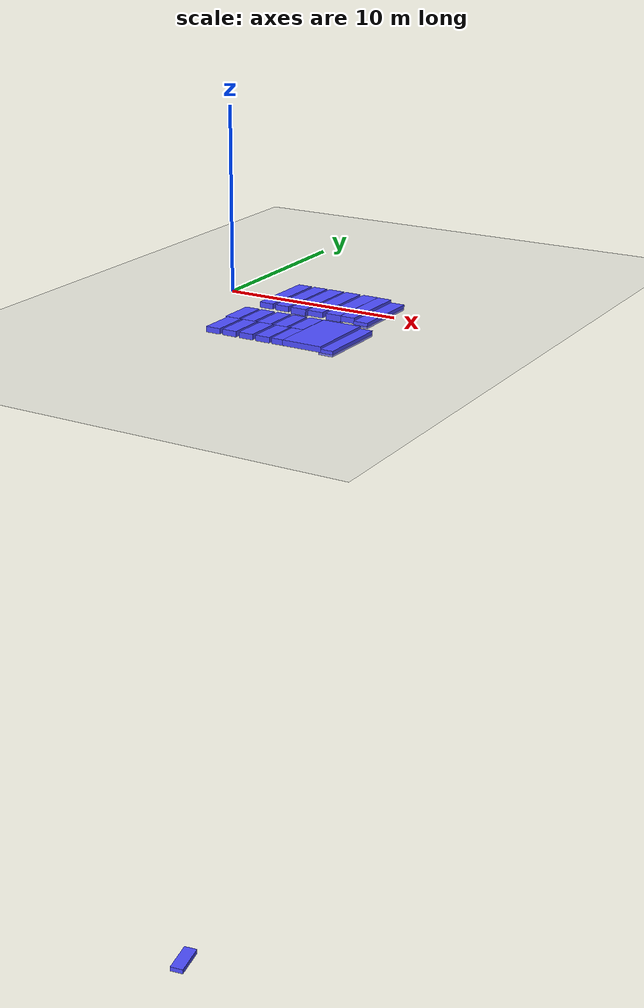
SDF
<sdf version="1.7">
 <world name="default">
  <model name="ground_plane">
   <static>1</static>
   <link name="link">
    <collision name="collision">
     <geometry><plane><normal>0 0 1</normal><size>100 100</size></plane></geometry>
     <surface><friction><ode><mu>100</mu><mu2>50</mu2></ode></friction></surface>
    </collision>
    <visual name="visual">
     <cast_shadows>0</cast_shadows>
     <geometry><plane><normal>0 0 1</normal><size>100 100</size></plane></geometry>
     <material>
      <script><uri>file://media/materials/scripts/gazebo.material</uri><name>Gazebo/Grey</name></script>
     </material>
    </visual>
   </link>
  </model>
  <model name="ban_400_80_30_clone_clone">
   <link name="link">
    <inertial>
     <mass>1</mass>
     <inertia>
      <ixx>0.166667</ixx>
      <ixy>0</ixy>
      <ixz>0</ixz>
      <iyy>0.166667</iyy>
      <iyz>0</iyz>
      <izz>0.166667</izz>
     </inertia>
    </inertial>
    <visual name="visual">
     <geometry><box><size>4 0.8 0.3</size></box></geometry>
     <material>
      <script><name>Gazebo/Grey</name><uri>file://media/materials/scripts/gazebo.material</uri></script>
      <shader type="pixel"><normal_map>__default__</normal_map></shader>
      <ambient>0.3 0.3 1 1</ambient>
      <diffuse>0.7 0.7 0.7 1</diffuse>
      <specular>0.01 0.01 0.01 1</specular>
      <emissive>0 0 0 1</emissive>
     </material>
    </visual>
    <collision name="collision">
     <geometry><box><size>4 0.8 0.3</size></box></geometry>
     <surface>
      <friction>
       <ode><mu>1</mu><mu2>1</mu2><fdir1>0 0 0</fdir1><slip1>0</slip1><slip2>0</slip2></ode>
       <torsional>
        <coefficient>1</coefficient>
        <patch_radius>0</patch_radius>
        <surface_radius>0</surface_radius>
        <use_patch_radius>1</use_patch_radius>
        <ode><slip>0</slip></ode>
       </torsional>
      </friction>
      <bounce><restitution_coefficient>0</restitution_coefficient><threshold>1e+06</threshold></bounce>
      <contact>
       <collide_without_contact>0</collide_without_contact>
       <collide_without_contact_bitmask>1</collide_without_contact_bitmask>
       <collide_bitmask>1</collide_bitmask>
       <ode>
        <soft_cfm>0</soft_cfm>
        <soft_erp>0.2</soft_erp>
        <kp>1e+13</kp>
        <kd>1</kd>
        <max_vel>0.01</max_vel>
        <min_depth>0</min_depth>
       </ode>
       <bullet>
        <split_impulse>1</split_impulse>
        <split_impulse_penetration_threshold>-0.01</split_impulse_penetration_threshold>
        <soft_cfm>0</soft_cfm>
        <soft_erp>0.2</soft_erp>
        <kp>1e+13</kp>
        <kd>1</kd>
       </bullet>
      </contact>
     </surface>
    </collision>
   </link>
   <static>1</static>
   <pose>3.39245 0.063056 0.15556 0 -0 1.55763</pose>
  </model>
  <model name="ban_400_80_30_clone_clone_clone">
   <link name="link">
    <inertial>
     <mass>1</mass>
     <inertia>
      <ixx>0.166667</ixx>
      <ixy>0</ixy>
      <ixz>0</ixz>
      <iyy>0.166667</iyy>
      <iyz>0</iyz>
      <izz>0.166667</izz>
     </inertia>
    </inertial>
    <visual name="visual">
     <geometry><box><size>4 0.8 0.3</size></box></geometry>
     <material>
      <script><name>Gazebo/Grey</name><uri>file://media/materials/scripts/gazebo.material</uri></script>
      <shader type="pixel"><normal_map>__default__</normal_map></shader>
      <ambient>0.3 0.3 1 1</ambient>
      <diffuse>0.7 0.7 0.7 1</diffuse>
      <specular>0.01 0.01 0.01 1</specular>
      <emissive>0 0 0 1</emissive>
     </material>
    </visual>
    <collision name="collision">
     <geometry><box><size>4 0.8 0.3</size></box></geometry>
     <surface>
      <friction>
       <ode><mu>1</mu><mu2>1</mu2><fdir1>0 0 0</fdir1><slip1>0</slip1><slip2>0</slip2></ode>
       <torsional>
        <coefficient>1</coefficient>
        <patch_radius>0</patch_radius>
        <surface_radius>0</surface_radius>
        <use_patch_radius>1</use_patch_radius>
        <ode><slip>0</slip></ode>
       </torsional>
      </friction>
      <bounce><restitution_coefficient>0</restitution_coefficient><threshold>1e+06</threshold></bounce>
      <contact>
       <collide_without_contact>0</collide_without_contact>
       <collide_without_contact_bitmask>1</collide_without_contact_bitmask>
       <collide_bitmask>1</collide_bitmask>
       <ode>
        <soft_cfm>0</soft_cfm>
        <soft_erp>0.2</soft_erp>
        <kp>1e+13</kp>
        <kd>1</kd>
        <max_vel>0.01</max_vel>
        <min_depth>0</min_depth>
       </ode>
       <bullet>
        <split_impulse>1</split_impulse>
        <split_impulse_penetration_threshold>-0.01</split_impulse_penetration_threshold>
        <soft_cfm>0</soft_cfm>
        <soft_erp>0.2</soft_erp>
        <kp>1e+13</kp>
        <kd>1</kd>
       </bullet>
      </contact>
     </surface>
    </collision>
   </link>
   <static>1</static>
   <pose>4.37496 0.053031 0.15556 0 -0 1.55763</pose>
  </model>
  <model name="ban_400_80_30_clone_clone_clone_clone">
   <link name="link">
    <inertial>
     <mass>1</mass>
     <inertia>
      <ixx>0.166667</ixx>
      <ixy>0</ixy>
      <ixz>0</ixz>
      <iyy>0.166667</iyy>
      <iyz>0</iyz>
      <izz>0.166667</izz>
     </inertia>
    </inertial>
    <visual name="visual">
     <geometry><box><size>4 0.884488 0.419826</size></box></geometry>
     <material>
      <script><name>Gazebo/Grey</name><uri>file://media/materials/scripts/gazebo.material</uri></script>
      <shader type="pixel"><normal_map>__default__</normal_map></shader>
      <ambient>0.3 0.3 1 1</ambient>
      <diffuse>0.7 0.7 0.7 1</diffuse>
      <specular>0.01 0.01 0.01 1</specular>
      <emissive>0 0 0 1</emissive>
     </material>
    </visual>
    <collision name="collision">
     <geometry><box><size>4 0.884488 0.419826</size></box></geometry>
     <surface>
      <friction>
       <ode><mu>1</mu><mu2>1</mu2><fdir1>0 0 0</fdir1><slip1>0</slip1><slip2>0</slip2></ode>
       <torsional>
        <coefficient>1</coefficient>
        <patch_radius>0</patch_radius>
        <surface_radius>0</surface_radius>
        <use_patch_radius>1</use_patch_radius>
        <ode><slip>0</slip></ode>
       </torsional>
      </friction>
      <bounce><restitution_coefficient>0</restitution_coefficient><threshold>1e+06</threshold></bounce>
      <contact>
       <collide_without_contact>0</collide_without_contact>
       <collide_without_contact_bitmask>1</collide_without_contact_bitmask>
       <collide_bitmask>1</collide_bitmask>
       <ode>
        <soft_cfm>0</soft_cfm>
        <soft_erp>0.2</soft_erp>
        <kp>1e+13</kp>
        <kd>1</kd>
        <max_vel>0.01</max_vel>
        <min_depth>0</min_depth>
       </ode>
       <bullet>
        <split_impulse>1</split_impulse>
        <split_impulse_penetration_threshold>-0.01</split_impulse_penetration_threshold>
        <soft_cfm>0</soft_cfm>
        <soft_erp>0.2</soft_erp>
        <kp>1e+13</kp>
        <kd>1</kd>
       </bullet>
      </contact>
     </surface>
    </collision>
   </link>
   <static>1</static>
   <pose>5.36986 0.045316 0.097515 0 -0 1.55763</pose>
  </model>
  <model name="ban_400_80_30_clone_clone_clone_clone_0">
   <link name="link">
    <inertial>
     <mass>1</mass>
     <inertia>
      <ixx>0.166667</ixx>
      <ixy>0</ixy>
      <ixz>0</ixz>
      <iyy>0.166667</iyy>
      <iyz>0</iyz>
      <izz>0.166667</izz>
     </inertia>
    </inertial>
    <visual name="visual">
     <geometry><box><size>4 0.893808 0.3</size></box></geometry>
     <material>
      <script><name>Gazebo/Grey</name><uri>file://media/materials/scripts/gazebo.material</uri></script>
      <shader type="pixel"><normal_map>__default__</normal_map></shader>
      <ambient>0.3 0.3 1 1</ambient>
      <diffuse>0.7 0.7 0.7 1</diffuse>
      <specular>0.01 0.01 0.01 1</specular>
      <emissive>0 0 0 1</emissive>
     </material>
    </visual>
    <collision name="collision">
     <geometry><box><size>4 0.893808 0.3</size></box></geometry>
     <surface>
      <friction>
       <ode><mu>1</mu><mu2>1</mu2><fdir1>0 0 0</fdir1><slip1>0</slip1><slip2>0</slip2></ode>
       <torsional>
        <coefficient>1</coefficient>
        <patch_radius>0</patch_radius>
        <surface_radius>0</surface_radius>
        <use_patch_radius>1</use_patch_radius>
        <ode><slip>0</slip></ode>
       </torsional>
      </friction>
      <bounce><restitution_coefficient>0</restitution_coefficient><threshold>1e+06</threshold></bounce>
      <contact>
       <collide_without_contact>0</collide_without_contact>
       <collide_without_contact_bitmask>1</collide_without_contact_bitmask>
       <collide_bitmask>1</collide_bitmask>
       <ode>
        <soft_cfm>0</soft_cfm>
        <soft_erp>0.2</soft_erp>
        <kp>1e+13</kp>
        <kd>1</kd>
        <max_vel>0.01</max_vel>
        <min_depth>0</min_depth>
       </ode>
       <bullet>
        <split_impulse>1</split_impulse>
        <split_impulse_penetration_threshold>-0.01</split_impulse_penetration_threshold>
        <soft_cfm>0</soft_cfm>
        <soft_erp>0.2</soft_erp>
        <kp>1e+13</kp>
        <kd>1</kd>
       </bullet>
      </contact>
     </surface>
    </collision>
   </link>
   <static>1</static>
   <pose>6.39845 0.026417 0.15556 0 -0 1.55763</pose>
  </model>
  <model name="ban_400_80_30_clone_clone_clone_clone_clone">
   <link name="link">
    <inertial>
     <mass>1</mass>
     <inertia>
      <ixx>0.166667</ixx>
      <ixy>0</ixy>
      <ixz>0</ixz>
      <iyy>0.166667</iyy>
      <iyz>0</iyz>
      <izz>0.166667</izz>
     </inertia>
    </inertial>
    <visual name="visual">
     <geometry><box><size>4 0.884489 0.419826</size></box></geometry>
     <material>
      <script><name>Gazebo/Grey</name><uri>file://media/materials/scripts/gazebo.material</uri></script>
      <shader type="pixel"><normal_map>__default__</normal_map></shader>
      <ambient>0.3 0.3 1 1</ambient>
      <diffuse>0.7 0.7 0.7 1</diffuse>
      <specular>0.01 0.01 0.01 1</specular>
      <emissive>0 0 0 1</emissive>
     </material>
    </visual>
    <collision name="collision">
     <geometry><box><size>4 0.884489 0.419826</size></box></geometry>
     <surface>
      <friction>
       <ode><mu>1</mu><mu2>1</mu2><fdir1>0 0 0</fdir1><slip1>0</slip1><slip2>0</slip2></ode>
       <torsional>
        <coefficient>1</coefficient>
        <patch_radius>0</patch_radius>
        <surface_radius>0</surface_radius>
        <use_patch_radius>1</use_patch_radius>
        <ode><slip>0</slip></ode>
       </torsional>
      </friction>
      <bounce><restitution_coefficient>0</restitution_coefficient><threshold>1e+06</threshold></bounce>
      <contact>
       <collide_without_contact>0</collide_without_contact>
       <collide_without_contact_bitmask>1</collide_without_contact_bitmask>
       <collide_bitmask>1</collide_bitmask>
       <ode>
        <soft_cfm>0</soft_cfm>
        <soft_erp>0.2</soft_erp>
        <kp>1e+13</kp>
        <kd>1</kd>
        <max_vel>0.01</max_vel>
        <min_depth>0</min_depth>
       </ode>
       <bullet>
        <split_impulse>1</split_impulse>
        <split_impulse_penetration_threshold>-0.01</split_impulse_penetration_threshold>
        <soft_cfm>0</soft_cfm>
        <soft_erp>0.2</soft_erp>
        <kp>1e+13</kp>
        <kd>1</kd>
       </bullet>
      </contact>
     </surface>
    </collision>
   </link>
   <static>1</static>
   <pose>7.49306 0.005349 0.097515 0 -0 1.55763</pose>
  </model>
  <model name="ban_400_80_30_clone_clone_0">
   <link name="link">
    <inertial>
     <mass>1</mass>
     <inertia>
      <ixx>0.166667</ixx>
      <ixy>0</ixy>
      <ixz>0</ixz>
      <iyy>0.166667</iyy>
      <iyz>0</iyz>
      <izz>0.166667</izz>
     </inertia>
    </inertial>
    <visual name="visual">
     <geometry><box><size>4 0.8 0.3</size></box></geometry>
     <material>
      <script><name>Gazebo/Grey</name><uri>file://media/materials/scripts/gazebo.material</uri></script>
      <shader type="pixel"><normal_map>__default__</normal_map></shader>
      <ambient>0.3 0.3 1 1</ambient>
      <diffuse>0.7 0.7 0.7 1</diffuse>
      <specular>0.01 0.01 0.01 1</specular>
      <emissive>0 0 0 1</emissive>
     </material>
    </visual>
    <collision name="collision">
     <geometry><box><size>4 0.8 0.3</size></box></geometry>
     <surface>
      <friction>
       <ode><mu>1</mu><mu2>1</mu2><fdir1>0 0 0</fdir1><slip1>0</slip1><slip2>0</slip2></ode>
       <torsional>
        <coefficient>1</coefficient>
        <patch_radius>0</patch_radius>
        <surface_radius>0</surface_radius>
        <use_patch_radius>1</use_patch_radius>
        <ode><slip>0</slip></ode>
       </torsional>
      </friction>
      <bounce><restitution_coefficient>0</restitution_coefficient><threshold>1e+06</threshold></bounce>
      <contact>
       <collide_without_contact>0</collide_without_contact>
       <collide_without_contact_bitmask>1</collide_without_contact_bitmask>
       <collide_bitmask>1</collide_bitmask>
       <ode>
        <soft_cfm>0</soft_cfm>
        <soft_erp>0.2</soft_erp>
        <kp>1e+13</kp>
        <kd>1</kd>
        <max_vel>0.01</max_vel>
        <min_depth>0</min_depth>
       </ode>
       <bullet>
        <split_impulse>1</split_impulse>
        <split_impulse_penetration_threshold>-0.01</split_impulse_penetration_threshold>
        <soft_cfm>0</soft_cfm>
        <soft_erp>0.2</soft_erp>
        <kp>1e+13</kp>
        <kd>1</kd>
       </bullet>
      </contact>
     </surface>
    </collision>
   </link>
   <static>1</static>
   <pose>8.33888 -0.001923 0.150704 0 -0 1.55763</pose>
  </model>
  <model name="ban_400_80_30_clone_0">
   <link name="link">
    <inertial>
     <mass>1</mass>
     <inertia>
      <ixx>0.166667</ixx>
      <ixy>0</ixy>
      <ixz>0</ixz>
      <iyy>0.166667</iyy>
      <iyz>0</iyz>
      <izz>0.166667</izz>
     </inertia>
    </inertial>
    <visual name="visual">
     <geometry><box><size>4 0.8 0.3</size></box></geometry>
     <material>
      <script><name>Gazebo/Grey</name><uri>file://media/materials/scripts/gazebo.material</uri></script>
      <shader type="pixel"><normal_map>__default__</normal_map></shader>
      <ambient>0.3 0.3 1 1</ambient>
      <diffuse>0.7 0.7 0.7 1</diffuse>
      <specular>0.01 0.01 0.01 1</specular>
      <emissive>0 0 0 1</emissive>
     </material>
    </visual>
    <collision name="collision">
     <geometry><box><size>4 0.8 0.3</size></box></geometry>
     <surface>
      <friction>
       <ode><mu>1</mu><mu2>1</mu2><fdir1>0 0 0</fdir1><slip1>0</slip1><slip2>0</slip2></ode>
       <torsional>
        <coefficient>1</coefficient>
        <patch_radius>0</patch_radius>
        <surface_radius>0</surface_radius>
        <use_patch_radius>1</use_patch_radius>
        <ode><slip>0</slip></ode>
       </torsional>
      </friction>
      <bounce><restitution_coefficient>0</restitution_coefficient><threshold>1e+06</threshold></bounce>
      <contact>
       <collide_without_contact>0</collide_without_contact>
       <collide_without_contact_bitmask>1</collide_without_contact_bitmask>
       <collide_bitmask>1</collide_bitmask>
       <ode>
        <soft_cfm>0</soft_cfm>
        <soft_erp>0.2</soft_erp>
        <kp>1e+13</kp>
        <kd>1</kd>
        <max_vel>0.01</max_vel>
        <min_depth>0</min_depth>
       </ode>
       <bullet>
        <split_impulse>1</split_impulse>
        <split_impulse_penetration_threshold>-0.01</split_impulse_penetration_threshold>
        <soft_cfm>0</soft_cfm>
        <soft_erp>0.2</soft_erp>
        <kp>1e+13</kp>
        <kd>1</kd>
       </bullet>
      </contact>
     </surface>
    </collision>
   </link>
   <static>1</static>
   <pose>9.1293 -0.014354 0 0 -0 1.55763</pose>
  </model>
  <model name="ban_200_80_30">
   <link name="link">
    <inertial>
     <mass>1</mass>
     <inertia>
      <ixx>0.166667</ixx>
      <ixy>0</ixy>
      <ixz>0</ixz>
      <iyy>0.166667</iyy>
      <iyz>0</iyz>
      <izz>0.166667</izz>
     </inertia>
    </inertial>
    <visual name="visual">
     <geometry><box><size>2 0.8 0.3</size></box></geometry>
     <material>
      <script><name>Gazebo/Grey</name><uri>file://media/materials/scripts/gazebo.material</uri></script>
      <shader type="pixel"><normal_map>__default__</normal_map></shader>
      <ambient>0.3 0.3 1 1</ambient>
      <diffuse>0.7 0.7 0.7 1</diffuse>
      <specular>0.01 0.01 0.01 1</specular>
      <emissive>0 0 0 1</emissive>
     </material>
    </visual>
    <collision name="collision">
     <geometry><box><size>2 0.8 0.3</size></box></geometry>
     <surface>
      <friction>
       <ode><mu>1</mu><mu2>1</mu2><fdir1>0 0 0</fdir1><slip1>0</slip1><slip2>0</slip2></ode>
       <torsional>
        <coefficient>1</coefficient>
        <patch_radius>0</patch_radius>
        <surface_radius>0</surface_radius>
        <use_patch_radius>1</use_patch_radius>
        <ode><slip>0</slip></ode>
       </torsional>
      </friction>
      <bounce><restitution_coefficient>0</restitution_coefficient><threshold>1e+06</threshold></bounce>
      <contact>
       <collide_without_contact>0</collide_without_contact>
       <collide_without_contact_bitmask>1</collide_without_contact_bitmask>
       <collide_bitmask>1</collide_bitmask>
       <ode>
        <soft_cfm>0</soft_cfm>
        <soft_erp>0.2</soft_erp>
        <kp>1e+13</kp>
        <kd>1</kd>
        <max_vel>0.01</max_vel>
        <min_depth>0</min_depth>
       </ode>
       <bullet>
        <split_impulse>1</split_impulse>
        <split_impulse_penetration_threshold>-0.01</split_impulse_penetration_threshold>
        <soft_cfm>0</soft_cfm>
        <soft_erp>0.2</soft_erp>
        <kp>1e+13</kp>
        <kd>1</kd>
       </bullet>
      </contact>
     </surface>
    </collision>
   </link>
   <static>1</static>
   <pose>3.19073 -4.01387 0.12138 0 0 -1.57453</pose>
  </model>
  <model name="ban_200_80_30_clone">
   <link name="link">
    <inertial>
     <mass>1</mass>
     <inertia>
      <ixx>0.166667</ixx>
      <ixy>0</ixy>
      <ixz>0</ixz>
      <iyy>0.166667</iyy>
      <iyz>0</iyz>
      <izz>0.166667</izz>
     </inertia>
    </inertial>
    <visual name="visual">
     <geometry><box><size>2 0.8 0.3</size></box></geometry>
     <material>
      <script><name>Gazebo/Grey</name><uri>file://media/materials/scripts/gazebo.material</uri></script>
      <shader type="pixel"><normal_map>__default__</normal_map></shader>
      <ambient>0.3 0.3 1 1</ambient>
      <diffuse>0.7 0.7 0.7 1</diffuse>
      <specular>0.01 0.01 0.01 1</specular>
      <emissive>0 0 0 1</emissive>
     </material>
    </visual>
    <collision name="collision">
     <geometry><box><size>2 0.8 0.3</size></box></geometry>
     <surface>
      <friction>
       <ode><mu>1</mu><mu2>1</mu2><fdir1>0 0 0</fdir1><slip1>0</slip1><slip2>0</slip2></ode>
       <torsional>
        <coefficient>1</coefficient>
        <patch_radius>0</patch_radius>
        <surface_radius>0</surface_radius>
        <use_patch_radius>1</use_patch_radius>
        <ode><slip>0</slip></ode>
       </torsional>
      </friction>
      <bounce><restitution_coefficient>0</restitution_coefficient><threshold>1e+06</threshold></bounce>
      <contact>
       <collide_without_contact>0</collide_without_contact>
       <collide_without_contact_bitmask>1</collide_without_contact_bitmask>
       <collide_bitmask>1</collide_bitmask>
       <ode>
        <soft_cfm>0</soft_cfm>
        <soft_erp>0.2</soft_erp>
        <kp>1e+13</kp>
        <kd>1</kd>
        <max_vel>0.01</max_vel>
        <min_depth>0</min_depth>
       </ode>
       <bullet>
        <split_impulse>1</split_impulse>
        <split_impulse_penetration_threshold>-0.01</split_impulse_penetration_threshold>
        <soft_cfm>0</soft_cfm>
        <soft_erp>0.2</soft_erp>
        <kp>1e+13</kp>
        <kd>1</kd>
       </bullet>
      </contact>
     </surface>
    </collision>
   </link>
   <static>1</static>
   <pose>3.34228 -6.01948 0.12138 0 0 -1.57453</pose>
  </model>
  <model name="ban_200_80_30_clone_0">
   <link name="link">
    <inertial>
     <mass>1</mass>
     <inertia>
      <ixx>0.166667</ixx>
      <ixy>0</ixy>
      <ixz>0</ixz>
      <iyy>0.166667</iyy>
      <iyz>0</iyz>
      <izz>0.166667</izz>
     </inertia>
    </inertial>
    <visual name="visual">
     <geometry><box><size>2 0.8 0.3</size></box></geometry>
     <material>
      <script><name>Gazebo/Grey</name><uri>file://media/materials/scripts/gazebo.material</uri></script>
      <shader type="pixel"><normal_map>__default__</normal_map></shader>
      <ambient>0.3 0.3 1 1</ambient>
      <diffuse>0.7 0.7 0.7 1</diffuse>
      <specular>0.01 0.01 0.01 1</specular>
      <emissive>0 0 0 1</emissive>
     </material>
    </visual>
    <collision name="collision">
     <geometry><box><size>2 0.8 0.3</size></box></geometry>
     <surface>
      <friction>
       <ode><mu>1</mu><mu2>1</mu2><fdir1>0 0 0</fdir1><slip1>0</slip1><slip2>0</slip2></ode>
       <torsional>
        <coefficient>1</coefficient>
        <patch_radius>0</patch_radius>
        <surface_radius>0</surface_radius>
        <use_patch_radius>1</use_patch_radius>
        <ode><slip>0</slip></ode>
       </torsional>
      </friction>
      <bounce><restitution_coefficient>0</restitution_coefficient><threshold>1e+06</threshold></bounce>
      <contact>
       <collide_without_contact>0</collide_without_contact>
       <collide_without_contact_bitmask>1</collide_without_contact_bitmask>
       <collide_bitmask>1</collide_bitmask>
       <ode>
        <soft_cfm>0</soft_cfm>
        <soft_erp>0.2</soft_erp>
        <kp>1e+13</kp>
        <kd>1</kd>
        <max_vel>0.01</max_vel>
        <min_depth>0</min_depth>
       </ode>
       <bullet>
        <split_impulse>1</split_impulse>
        <split_impulse_penetration_threshold>-0.01</split_impulse_penetration_threshold>
        <soft_cfm>0</soft_cfm>
        <soft_erp>0.2</soft_erp>
        <kp>1e+13</kp>
        <kd>1</kd>
       </bullet>
      </contact>
     </surface>
    </collision>
   </link>
   <static>1</static>
   <pose>4.13438 -4.00905 0.12138 0 0 -1.57453</pose>
  </model>
  <model name="ban_200_80_30_clone_1">
   <link name="link">
    <inertial>
     <mass>1</mass>
     <inertia>
      <ixx>0.166667</ixx>
      <ixy>0</ixy>
      <ixz>0</ixz>
      <iyy>0.166667</iyy>
      <iyz>0</iyz>
      <izz>0.166667</izz>
     </inertia>
    </inertial>
    <visual name="visual">
     <geometry><box><size>2 0.8 0.3</size></box></geometry>
     <material>
      <script><name>Gazebo/Grey</name><uri>file://media/materials/scripts/gazebo.material</uri></script>
      <shader type="pixel"><normal_map>__default__</normal_map></shader>
      <ambient>0.3 0.3 1 1</ambient>
      <diffuse>0.7 0.7 0.7 1</diffuse>
      <specular>0.01 0.01 0.01 1</specular>
      <emissive>0 0 0 1</emissive>
     </material>
    </visual>
    <collision name="collision">
     <geometry><box><size>2 0.8 0.3</size></box></geometry>
     <surface>
      <friction>
       <ode><mu>1</mu><mu2>1</mu2><fdir1>0 0 0</fdir1><slip1>0</slip1><slip2>0</slip2></ode>
       <torsional>
        <coefficient>1</coefficient>
        <patch_radius>0</patch_radius>
        <surface_radius>0</surface_radius>
        <use_patch_radius>1</use_patch_radius>
        <ode><slip>0</slip></ode>
       </torsional>
      </friction>
      <bounce><restitution_coefficient>0</restitution_coefficient><threshold>1e+06</threshold></bounce>
      <contact>
       <collide_without_contact>0</collide_without_contact>
       <collide_without_contact_bitmask>1</collide_without_contact_bitmask>
       <collide_bitmask>1</collide_bitmask>
       <ode>
        <soft_cfm>0</soft_cfm>
        <soft_erp>0.2</soft_erp>
        <kp>1e+13</kp>
        <kd>1</kd>
        <max_vel>0.01</max_vel>
        <min_depth>0</min_depth>
       </ode>
       <bullet>
        <split_impulse>1</split_impulse>
        <split_impulse_penetration_threshold>-0.01</split_impulse_penetration_threshold>
        <soft_cfm>0</soft_cfm>
        <soft_erp>0.2</soft_erp>
        <kp>1e+13</kp>
        <kd>1</kd>
       </bullet>
      </contact>
     </surface>
    </collision>
   </link>
   <static>1</static>
   <pose>4.30573 -6.01081 0.12138 0 0 -1.57453</pose>
  </model>
  <model name="ban_200_80_30_clone_2">
   <link name="link">
    <inertial>
     <mass>1</mass>
     <inertia>
      <ixx>0.166667</ixx>
      <ixy>0</ixy>
      <ixz>0</ixz>
      <iyy>0.166667</iyy>
      <iyz>0</iyz>
      <izz>0.166667</izz>
     </inertia>
    </inertial>
    <visual name="visual">
     <geometry><box><size>2 0.8 0.3</size></box></geometry>
     <material>
      <script><name>Gazebo/Grey</name><uri>file://media/materials/scripts/gazebo.material</uri></script>
      <shader type="pixel"><normal_map>__default__</normal_map></shader>
      <ambient>0.3 0.3 1 1</ambient>
      <diffuse>0.7 0.7 0.7 1</diffuse>
      <specular>0.01 0.01 0.01 1</specular>
      <emissive>0 0 0 1</emissive>
     </material>
    </visual>
    <collision name="collision">
     <geometry><box><size>2 0.8 0.3</size></box></geometry>
     <surface>
      <friction>
       <ode><mu>1</mu><mu2>1</mu2><fdir1>0 0 0</fdir1><slip1>0</slip1><slip2>0</slip2></ode>
       <torsional>
        <coefficient>1</coefficient>
        <patch_radius>0</patch_radius>
        <surface_radius>0</surface_radius>
        <use_patch_radius>1</use_patch_radius>
        <ode><slip>0</slip></ode>
       </torsional>
      </friction>
      <bounce><restitution_coefficient>0</restitution_coefficient><threshold>1e+06</threshold></bounce>
      <contact>
       <collide_without_contact>0</collide_without_contact>
       <collide_without_contact_bitmask>1</collide_without_contact_bitmask>
       <collide_bitmask>1</collide_bitmask>
       <ode>
        <soft_cfm>0</soft_cfm>
        <soft_erp>0.2</soft_erp>
        <kp>1e+13</kp>
        <kd>1</kd>
        <max_vel>0.01</max_vel>
        <min_depth>0</min_depth>
       </ode>
       <bullet>
        <split_impulse>1</split_impulse>
        <split_impulse_penetration_threshold>-0.01</split_impulse_penetration_threshold>
        <soft_cfm>0</soft_cfm>
        <soft_erp>0.2</soft_erp>
        <kp>1e+13</kp>
        <kd>1</kd>
       </bullet>
      </contact>
     </surface>
    </collision>
   </link>
   <static>1</static>
   <pose>5.11893 -4.00066 0.12138 0 0 -1.57453</pose>
  </model>
  <model name="ban_200_80_30_clone_3">
   <link name="link">
    <inertial>
     <mass>1</mass>
     <inertia>
      <ixx>0.166667</ixx>
      <ixy>0</ixy>
      <ixz>0</ixz>
      <iyy>0.166667</iyy>
      <iyz>0</iyz>
      <izz>0.166667</izz>
     </inertia>
    </inertial>
    <visual name="visual">
     <geometry><box><size>2 0.8 0.3</size></box></geometry>
     <material>
      <script><name>Gazebo/Grey</name><uri>file://media/materials/scripts/gazebo.material</uri></script>
      <shader type="pixel"><normal_map>__default__</normal_map></shader>
      <ambient>0.3 0.3 1 1</ambient>
      <diffuse>0.7 0.7 0.7 1</diffuse>
      <specular>0.01 0.01 0.01 1</specular>
      <emissive>0 0 0 1</emissive>
     </material>
    </visual>
    <collision name="collision">
     <geometry><box><size>2 0.8 0.3</size></box></geometry>
     <surface>
      <friction>
       <ode><mu>1</mu><mu2>1</mu2><fdir1>0 0 0</fdir1><slip1>0</slip1><slip2>0</slip2></ode>
       <torsional>
        <coefficient>1</coefficient>
        <patch_radius>0</patch_radius>
        <surface_radius>0</surface_radius>
        <use_patch_radius>1</use_patch_radius>
        <ode><slip>0</slip></ode>
       </torsional>
      </friction>
      <bounce><restitution_coefficient>0</restitution_coefficient><threshold>1e+06</threshold></bounce>
      <contact>
       <collide_without_contact>0</collide_without_contact>
       <collide_without_contact_bitmask>1</collide_without_contact_bitmask>
       <collide_bitmask>1</collide_bitmask>
       <ode>
        <soft_cfm>0</soft_cfm>
        <soft_erp>0.2</soft_erp>
        <kp>1e+13</kp>
        <kd>1</kd>
        <max_vel>0.01</max_vel>
        <min_depth>0</min_depth>
       </ode>
       <bullet>
        <split_impulse>1</split_impulse>
        <split_impulse_penetration_threshold>-0.01</split_impulse_penetration_threshold>
        <soft_cfm>0</soft_cfm>
        <soft_erp>0.2</soft_erp>
        <kp>1e+13</kp>
        <kd>1</kd>
       </bullet>
      </contact>
     </surface>
    </collision>
   </link>
   <static>1</static>
   <pose>5.28348 -6.00227 0.12138 0 0 -1.57453</pose>
  </model>
  <model name="ban_200_80_30_clone_4">
   <link name="link">
    <inertial>
     <mass>1</mass>
     <inertia>
      <ixx>0.166667</ixx>
      <ixy>0</ixy>
      <ixz>0</ixz>
      <iyy>0.166667</iyy>
      <iyz>0</iyz>
      <izz>0.166667</izz>
     </inertia>
    </inertial>
    <visual name="visual">
     <geometry><box><size>2 0.8 0.3</size></box></geometry>
     <material>
      <script><name>Gazebo/Grey</name><uri>file://media/materials/scripts/gazebo.material</uri></script>
      <shader type="pixel"><normal_map>__default__</normal_map></shader>
      <ambient>0.3 0.3 1 1</ambient>
      <diffuse>0.7 0.7 0.7 1</diffuse>
      <specular>0.01 0.01 0.01 1</specular>
      <emissive>0 0 0 1</emissive>
     </material>
    </visual>
    <collision name="collision">
     <geometry><box><size>2 0.8 0.3</size></box></geometry>
     <surface>
      <friction>
       <ode><mu>1</mu><mu2>1</mu2><fdir1>0 0 0</fdir1><slip1>0</slip1><slip2>0</slip2></ode>
       <torsional>
        <coefficient>1</coefficient>
        <patch_radius>0</patch_radius>
        <surface_radius>0</surface_radius>
        <use_patch_radius>1</use_patch_radius>
        <ode><slip>0</slip></ode>
       </torsional>
      </friction>
      <bounce><restitution_coefficient>0</restitution_coefficient><threshold>1e+06</threshold></bounce>
      <contact>
       <collide_without_contact>0</collide_without_contact>
       <collide_without_contact_bitmask>1</collide_without_contact_bitmask>
       <collide_bitmask>1</collide_bitmask>
       <ode>
        <soft_cfm>0</soft_cfm>
        <soft_erp>0.2</soft_erp>
        <kp>1e+13</kp>
        <kd>1</kd>
        <max_vel>0.01</max_vel>
        <min_depth>0</min_depth>
       </ode>
       <bullet>
        <split_impulse>1</split_impulse>
        <split_impulse_penetration_threshold>-0.01</split_impulse_penetration_threshold>
        <soft_cfm>0</soft_cfm>
        <soft_erp>0.2</soft_erp>
        <kp>1e+13</kp>
        <kd>1</kd>
       </bullet>
      </contact>
     </surface>
    </collision>
   </link>
   <static>1</static>
   <pose>6.0825 -4.00246 0.12138 0 0 -1.57453</pose>
  </model>
  <model name="ban_200_80_30_clone_5">
   <link name="link">
    <inertial>
     <mass>1</mass>
     <inertia>
      <ixx>0.166667</ixx>
      <ixy>0</ixy>
      <ixz>0</ixz>
      <iyy>0.166667</iyy>
      <iyz>0</iyz>
      <izz>0.166667</izz>
     </inertia>
    </inertial>
    <visual name="visual">
     <geometry><box><size>2 0.8 0.3</size></box></geometry>
     <material>
      <script><name>Gazebo/Grey</name><uri>file://media/materials/scripts/gazebo.material</uri></script>
      <shader type="pixel"><normal_map>__default__</normal_map></shader>
      <ambient>0.3 0.3 1 1</ambient>
      <diffuse>0.7 0.7 0.7 1</diffuse>
      <specular>0.01 0.01 0.01 1</specular>
      <emissive>0 0 0 1</emissive>
     </material>
    </visual>
    <collision name="collision">
     <geometry><box><size>2 0.8 0.3</size></box></geometry>
     <surface>
      <friction>
       <ode><mu>1</mu><mu2>1</mu2><fdir1>0 0 0</fdir1><slip1>0</slip1><slip2>0</slip2></ode>
       <torsional>
        <coefficient>1</coefficient>
        <patch_radius>0</patch_radius>
        <surface_radius>0</surface_radius>
        <use_patch_radius>1</use_patch_radius>
        <ode><slip>0</slip></ode>
       </torsional>
      </friction>
      <bounce><restitution_coefficient>0</restitution_coefficient><threshold>1e+06</threshold></bounce>
      <contact>
       <collide_without_contact>0</collide_without_contact>
       <collide_without_contact_bitmask>1</collide_without_contact_bitmask>
       <collide_bitmask>1</collide_bitmask>
       <ode>
        <soft_cfm>0</soft_cfm>
        <soft_erp>0.2</soft_erp>
        <kp>1e+13</kp>
        <kd>1</kd>
        <max_vel>0.01</max_vel>
        <min_depth>0</min_depth>
       </ode>
       <bullet>
        <split_impulse>1</split_impulse>
        <split_impulse_penetration_threshold>-0.01</split_impulse_penetration_threshold>
        <soft_cfm>0</soft_cfm>
        <soft_erp>0.2</soft_erp>
        <kp>1e+13</kp>
        <kd>1</kd>
       </bullet>
      </contact>
     </surface>
    </collision>
   </link>
   <static>1</static>
   <pose>6.27593 -6.00952 0.12138 0 0 -1.57453</pose>
  </model>
  <model name="ban_200_80_30_clone_6">
   <link name="link">
    <inertial>
     <mass>1</mass>
     <inertia>
      <ixx>0.166667</ixx>
      <ixy>0</ixy>
      <ixz>0</ixz>
      <iyy>0.166667</iyy>
      <iyz>0</iyz>
      <izz>0.166667</izz>
     </inertia>
    </inertial>
    <visual name="visual">
     <geometry><box><size>2 0.8 0.3</size></box></geometry>
     <material>
      <script><name>Gazebo/Grey</name><uri>file://media/materials/scripts/gazebo.material</uri></script>
      <shader type="pixel"><normal_map>__default__</normal_map></shader>
      <ambient>0.3 0.3 1 1</ambient>
      <diffuse>0.7 0.7 0.7 1</diffuse>
      <specular>0.01 0.01 0.01 1</specular>
      <emissive>0 0 0 1</emissive>
     </material>
    </visual>
    <collision name="collision">
     <geometry><box><size>2 0.8 0.3</size></box></geometry>
     <surface>
      <friction>
       <ode><mu>1</mu><mu2>1</mu2><fdir1>0 0 0</fdir1><slip1>0</slip1><slip2>0</slip2></ode>
       <torsional>
        <coefficient>1</coefficient>
        <patch_radius>0</patch_radius>
        <surface_radius>0</surface_radius>
        <use_patch_radius>1</use_patch_radius>
        <ode><slip>0</slip></ode>
       </torsional>
      </friction>
      <bounce><restitution_coefficient>0</restitution_coefficient><threshold>1e+06</threshold></bounce>
      <contact>
       <collide_without_contact>0</collide_without_contact>
       <collide_without_contact_bitmask>1</collide_without_contact_bitmask>
       <collide_bitmask>1</collide_bitmask>
       <ode>
        <soft_cfm>0</soft_cfm>
        <soft_erp>0.2</soft_erp>
        <kp>1e+13</kp>
        <kd>1</kd>
        <max_vel>0.01</max_vel>
        <min_depth>0</min_depth>
       </ode>
       <bullet>
        <split_impulse>1</split_impulse>
        <split_impulse_penetration_threshold>-0.01</split_impulse_penetration_threshold>
        <soft_cfm>0</soft_cfm>
        <soft_erp>0.2</soft_erp>
        <kp>1e+13</kp>
        <kd>1</kd>
       </bullet>
      </contact>
     </surface>
    </collision>
   </link>
   <static>1</static>
   <pose>7.04749 -3.99179 0.12138 0 0 -1.57453</pose>
  </model>
  <model name="ban_200_80_30_clone_7">
   <link name="link">
    <inertial>
     <mass>1</mass>
     <inertia>
      <ixx>0.166667</ixx>
      <ixy>0</ixy>
      <ixz>0</ixz>
      <iyy>0.166667</iyy>
      <iyz>0</iyz>
      <izz>0.166667</izz>
     </inertia>
    </inertial>
    <visual name="visual">
     <geometry><box><size>2 0.8 0.3</size></box></geometry>
     <material>
      <script><name>Gazebo/Grey</name><uri>file://media/materials/scripts/gazebo.material</uri></script>
      <shader type="pixel"><normal_map>__default__</normal_map></shader>
      <ambient>0.3 0.3 1 1</ambient>
      <diffuse>0.7 0.7 0.7 1</diffuse>
      <specular>0.01 0.01 0.01 1</specular>
      <emissive>0 0 0 1</emissive>
     </material>
    </visual>
    <collision name="collision">
     <geometry><box><size>2 0.8 0.3</size></box></geometry>
     <surface>
      <friction>
       <ode><mu>1</mu><mu2>1</mu2><fdir1>0 0 0</fdir1><slip1>0</slip1><slip2>0</slip2></ode>
       <torsional>
        <coefficient>1</coefficient>
        <patch_radius>0</patch_radius>
        <surface_radius>0</surface_radius>
        <use_patch_radius>1</use_patch_radius>
        <ode><slip>0</slip></ode>
       </torsional>
      </friction>
      <bounce><restitution_coefficient>0</restitution_coefficient><threshold>1e+06</threshold></bounce>
      <contact>
       <collide_without_contact>0</collide_without_contact>
       <collide_without_contact_bitmask>1</collide_without_contact_bitmask>
       <collide_bitmask>1</collide_bitmask>
       <ode>
        <soft_cfm>0</soft_cfm>
        <soft_erp>0.2</soft_erp>
        <kp>1e+13</kp>
        <kd>1</kd>
        <max_vel>0.01</max_vel>
        <min_depth>0</min_depth>
       </ode>
       <bullet>
        <split_impulse>1</split_impulse>
        <split_impulse_penetration_threshold>-0.01</split_impulse_penetration_threshold>
        <soft_cfm>0</soft_cfm>
        <soft_erp>0.2</soft_erp>
        <kp>1e+13</kp>
        <kd>1</kd>
       </bullet>
      </contact>
     </surface>
    </collision>
   </link>
   <static>1</static>
   <pose>7.20156 -5.99933 0.12138 0 0 -1.57453</pose>
  </model>
  <model name="ban_400_80_30_clone_2_clone">
   <link name="link">
    <inertial>
     <mass>1</mass>
     <inertia>
      <ixx>0.166667</ixx>
      <ixy>0</ixy>
      <ixz>0</ixz>
      <iyy>0.166667</iyy>
      <iyz>0</iyz>
      <izz>0.166667</izz>
     </inertia>
    </inertial>
    <visual name="visual">
     <geometry><box><size>4 2.17614 0.3</size></box></geometry>
     <material>
      <script><name>Gazebo/Grey</name><uri>file://media/materials/scripts/gazebo.material</uri></script>
      <shader type="pixel"><normal_map>__default__</normal_map></shader>
      <ambient>0.3 0.3 1 1</ambient>
      <diffuse>0.7 0.7 0.7 1</diffuse>
      <specular>0.01 0.01 0.01 1</specular>
      <emissive>0 0 0 1</emissive>
     </material>
    </visual>
    <collision name="collision">
     <geometry><box><size>4 2.17614 0.3</size></box></geometry>
     <surface>
      <friction>
       <ode><mu>1</mu><mu2>1</mu2><fdir1>0 0 0</fdir1><slip1>0</slip1><slip2>0</slip2></ode>
       <torsional>
        <coefficient>1</coefficient>
        <patch_radius>0</patch_radius>
        <surface_radius>0</surface_radius>
        <use_patch_radius>1</use_patch_radius>
        <ode><slip>0</slip></ode>
       </torsional>
      </friction>
      <bounce><restitution_coefficient>0</restitution_coefficient><threshold>1e+06</threshold></bounce>
      <contact>
       <collide_without_contact>0</collide_without_contact>
       <collide_without_contact_bitmask>1</collide_without_contact_bitmask>
       <collide_bitmask>1</collide_bitmask>
       <ode>
        <soft_cfm>0</soft_cfm>
        <soft_erp>0.2</soft_erp>
        <kp>1e+13</kp>
        <kd>1</kd>
        <max_vel>0.01</max_vel>
        <min_depth>0</min_depth>
       </ode>
       <bullet>
        <split_impulse>1</split_impulse>
        <split_impulse_penetration_threshold>-0.01</split_impulse_penetration_threshold>
        <soft_cfm>0</soft_cfm>
        <soft_erp>0.2</soft_erp>
        <kp>1e+13</kp>
        <kd>1</kd>
       </bullet>
      </contact>
     </surface>
    </collision>
   </link>
   <static>1</static>
   <pose>8.55942 -5.02421 0.12761 0 -0 1.55763</pose>
  </model>
  <model name="ban_400_80_30_clone_1_clone">
   <link name="link">
    <inertial>
     <mass>1</mass>
     <inertia>
      <ixx>0.166667</ixx>
      <ixy>0</ixy>
      <ixz>0</ixz>
      <iyy>0.166667</iyy>
      <iyz>0</iyz>
      <izz>0.166667</izz>
     </inertia>
    </inertial>
    <visual name="visual">
     <geometry><box><size>4 0.8 0.3</size></box></geometry>
     <material>
      <script><name>Gazebo/Grey</name><uri>file://media/materials/scripts/gazebo.material</uri></script>
      <shader type="pixel"><normal_map>__default__</normal_map></shader>
      <ambient>0.3 0.3 1 1</ambient>
      <diffuse>0.7 0.7 0.7 1</diffuse>
      <specular>0.01 0.01 0.01 1</specular>
      <emissive>0 0 0 1</emissive>
     </material>
    </visual>
    <collision name="collision">
     <geometry><box><size>4 0.8 0.3</size></box></geometry>
     <surface>
      <friction>
       <ode><mu>1</mu><mu2>1</mu2><fdir1>0 0 0</fdir1><slip1>0</slip1><slip2>0</slip2></ode>
       <torsional>
        <coefficient>1</coefficient>
        <patch_radius>0</patch_radius>
        <surface_radius>0</surface_radius>
        <use_patch_radius>1</use_patch_radius>
        <ode><slip>0</slip></ode>
       </torsional>
      </friction>
      <bounce><restitution_coefficient>0</restitution_coefficient><threshold>1e+06</threshold></bounce>
      <contact>
       <collide_without_contact>0</collide_without_contact>
       <collide_without_contact_bitmask>1</collide_without_contact_bitmask>
       <collide_bitmask>1</collide_bitmask>
       <ode>
        <soft_cfm>0</soft_cfm>
        <soft_erp>0.2</soft_erp>
        <kp>1e+13</kp>
        <kd>1</kd>
        <max_vel>0.01</max_vel>
        <min_depth>0</min_depth>
       </ode>
       <bullet>
        <split_impulse>1</split_impulse>
        <split_impulse_penetration_threshold>-0.01</split_impulse_penetration_threshold>
        <soft_cfm>0</soft_cfm>
        <soft_erp>0.2</soft_erp>
        <kp>1e+13</kp>
        <kd>1</kd>
       </bullet>
      </contact>
     </surface>
    </collision>
   </link>
   <static>1</static>
   <pose>9.93405 -5.0227 0 0 -0 1.55763</pose>
  </model>
  <model name="ban_200_80_30_clone_clone">
   <link name="link">
    <inertial>
     <mass>1</mass>
     <inertia>
      <ixx>0.166667</ixx>
      <ixy>0</ixy>
      <ixz>0</ixz>
      <iyy>0.166667</iyy>
      <iyz>0</iyz>
      <izz>0.166667</izz>
     </inertia>
    </inertial>
    <visual name="visual">
     <geometry><box><size>2 0.8 0.3</size></box></geometry>
     <material>
      <script><name>Gazebo/Grey</name><uri>file://media/materials/scripts/gazebo.material</uri></script>
      <shader type="pixel"><normal_map>__default__</normal_map></shader>
      <ambient>0.3 0.3 1 1</ambient>
      <diffuse>0.7 0.7 0.7 1</diffuse>
      <specular>0.01 0.01 0.01 1</specular>
      <emissive>0 0 0 1</emissive>
     </material>
    </visual>
    <collision name="collision">
     <geometry><box><size>2 0.8 0.3</size></box></geometry>
     <surface>
      <friction>
       <ode><mu>1</mu><mu2>1</mu2><fdir1>0 0 0</fdir1><slip1>0</slip1><slip2>0</slip2></ode>
       <torsional>
        <coefficient>1</coefficient>
        <patch_radius>0</patch_radius>
        <surface_radius>0</surface_radius>
        <use_patch_radius>1</use_patch_radius>
        <ode><slip>0</slip></ode>
       </torsional>
      </friction>
      <bounce><restitution_coefficient>0</restitution_coefficient><threshold>1e+06</threshold></bounce>
      <contact>
       <collide_without_contact>0</collide_without_contact>
       <collide_without_contact_bitmask>1</collide_without_contact_bitmask>
       <collide_bitmask>1</collide_bitmask>
       <ode>
        <soft_cfm>0</soft_cfm>
        <soft_erp>0.2</soft_erp>
        <kp>1e+13</kp>
        <kd>1</kd>
        <max_vel>0.01</max_vel>
        <min_depth>0</min_depth>
       </ode>
       <bullet>
        <split_impulse>1</split_impulse>
        <split_impulse_penetration_threshold>-0.01</split_impulse_penetration_threshold>
        <soft_cfm>0</soft_cfm>
        <soft_erp>0.2</soft_erp>
        <kp>1e+13</kp>
        <kd>1</kd>
       </bullet>
      </contact>
     </surface>
    </collision>
   </link>
   <static>1</static>
   <pose>3.32802 -11.2985 -36.3188 0 0 -1.39548</pose>
  </model>
 </world>
</sdf>
